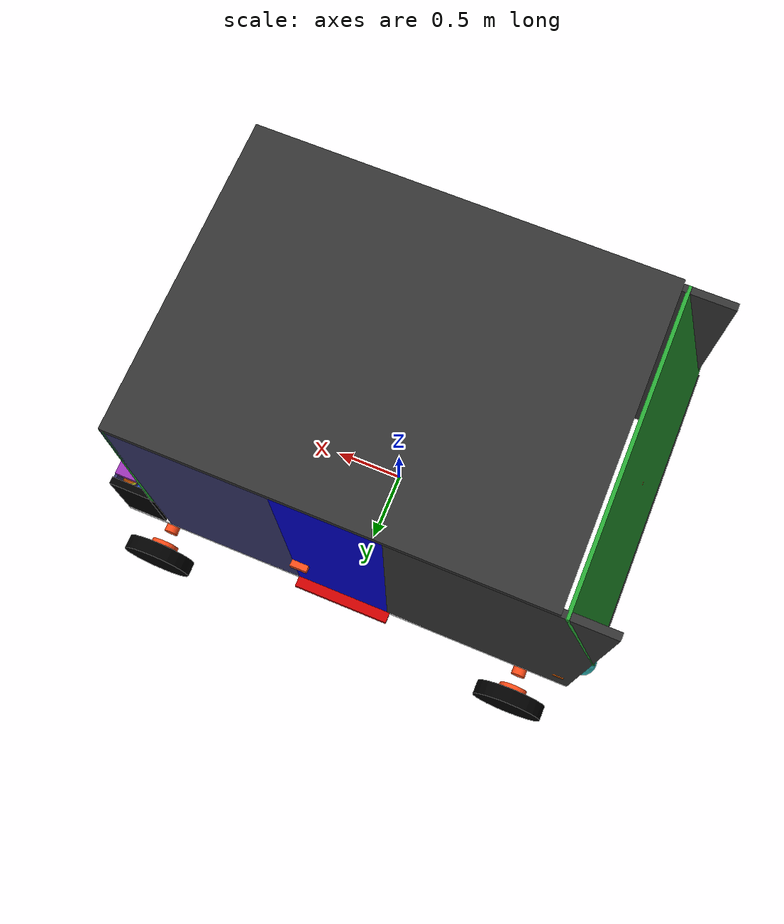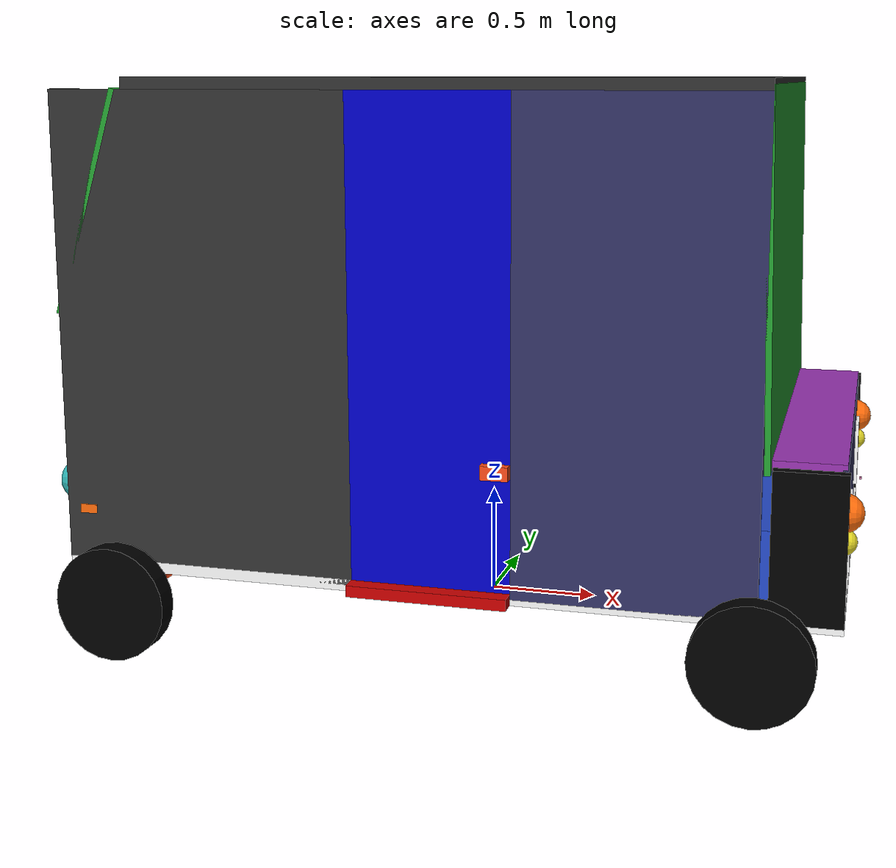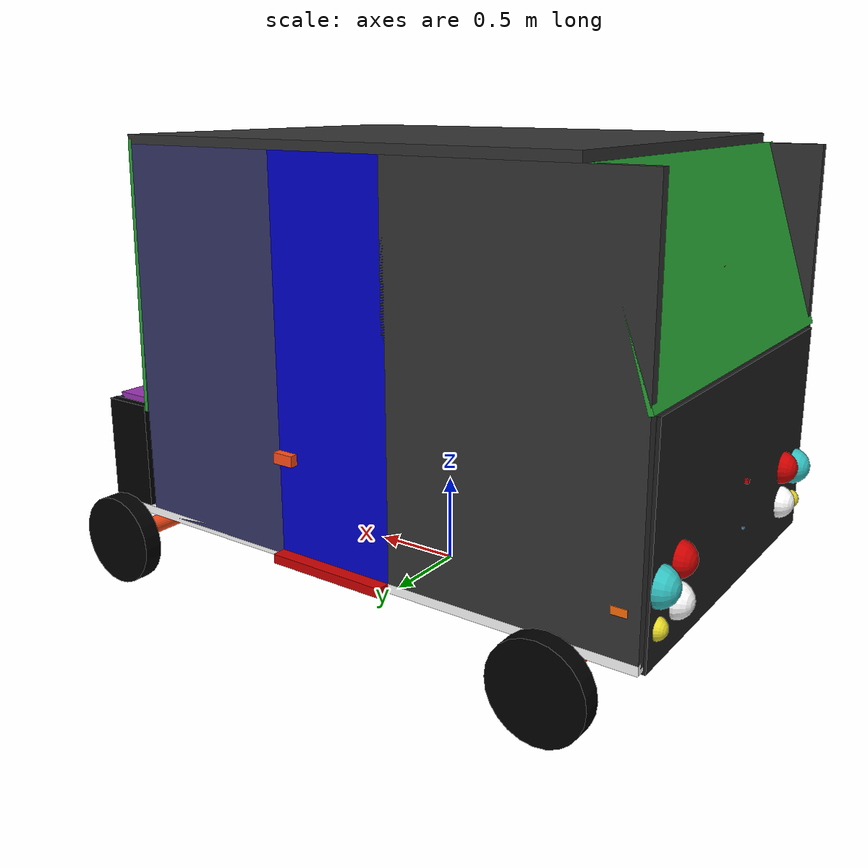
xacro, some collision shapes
<?xml version="1.0"?>

<robot name="navya_bus" xmlns:xacro="http://www.ros.org/wiki/xacro">

	<xacro:include filename="$(find navya_description)/urdf/materials.xacro"/>
	<xacro:include filename="$(find navya_description)/urdf/macros_modified_inertials.xacro"/>

<property name="vehicle_height" value="2.10" />

<!-- base_link properties -->
<property name="chassis_length" value="3.40" />
 <property name="chassis_width" value="2.10" />
 <property name="chassis_height" value="0.05" />
 <property name="chassis_mass" value="80.3000" />

 <!-- door properties -->
 <property name="door_width" value="0.702"/>
 <property name="door_length" value="${vehicle_height}"/>
 <property name="door_height" value="${chassis_height}"/>
 <property name="door_mass" value="12.0"/>

 <!-- guard -->
<property name="frontguard_width" value="${vehicle_height*0.3}" />
<property name="frontguard_height" value="0.02" />
<property name="frontguard_length" value="${chassis_width-2*chassis_height}" />
<property name="frontguard_mass" value="200.000" />
<property name="rearguard_width" value="${vehicle_height*0.55}" />
<property name="rearguard_height" value="0.02" />
 <property name="rearguard_length" value="${chassis_width -2*chassis_height}" />
<property name="rearguard_mass" value="180.000" />

<!-- axle -->
 <property name="axle_radius" value="0.05" />
 <property name="axle_length" value="2.2" />
<property name="axle_mass" value="70.000" />
<property name="axle_pos" value="${(chassis_length*0.5*0.8)}"/>

 <!-- rim -->
 <property name="rim_mass" value="200.00" />
 <property name="rim_radius" value="${(axle_radius)*2}" />
 <property name="rim_length" value="0.03" />
 <property name="rim_y_pos" value="${axle_length*0.5}"/>
 <property name="rim_y_t_pos" value="${.08391+.5*rim_length+rim_y_pos}"/>
  <property name="tyre_y_t_pos" value="${.7*wheel_length+.5*rim_length}"/>
 <property name="rim_x_pos" value="${axle_pos}"/>

 <!-- wheels -->
<property name="wheel_radius" value="${rim_radius*2.5}" />
<property name="wheel_length" value="0.102" />
<property name="wheel_mass" value="21.00" />
<property name="wheel_y_pos" value="${rim_y_pos+rim_length}"/>
 <property name="wheel_x_pos" value="${axle_pos}"/>

<!-- pedals -->
 <property name="pedal_mass" value="0.90" />
 <property name="pedal_radius" value="0.03" />
 <property name="pedal_height" value="0.12" />

 <!-- front side base_link -->
<property name="front_side_chassis_width" value="${chassis_length*0.3}" />
<!-- rear side base_link -->
<property name="rear_side_chassis_width" value="${chassis_length*0.4}" />
<!--  side door base_link -->
<property name="side_door_width" value="${chassis_length*0.3}" />
<property name="side_door_mass" value="18.00" />

<!-- All side base_link properties -->
 <property name="side_chassis_length" value="${vehicle_height}" />
 <property name="side_chassis_height" value="${chassis_height}" />
 <property name="side_chassis_mass" value="30.0" />

 <!-- rear side base_link -->
<property name="rear_side_chassis_width" value="${chassis_length*0.4}" />

<!-- lights properties-->

 <property name="foglight_height" value="0.005" />
 <property name="foglight_mass" value="0.052" />
 <property name="trafficator_radius" value="0.08"/>
 <property name="trafficator_mass" value="1.8"/>
 <property name="foglight_radius" value="${trafficator_radius*0.7}" />
 <property name="tr_light_length" value="0.020" />
 <property name="tr_light_width" value="0.0110" />
 <property name="tr_light_height" value="0.005" />
 <property name="tr_light_mass" value="0.452" />
 <property name="headlight_length" value="0.3" />
 <property name="headlight_width" value="0.2" />
 <property name="headlight_height" value="0.05" />
 <property name="headlight_mass" value="1.02" />
 <property name="rearlight_radius" value="0.050" />
 <property name="rearlight_length" value="0.015" />
 <property name="rearlight_mass" value="0.815" />
 <property name="breaklight_radius" value="0.0450" />
 <property name="breaklight_length" value="0.013" />
 <property name="breaklight_mass" value="0.715" />

 <!-- steering properties -->
 <property name="steering_radius" value="0.120" />
 <property name="steering_length" value="0.015" />
 <property name="steering_mass" value="12.015" />

 <!-- engine properities -->
  <property name="engine_length" value="${chassis_width-side_chassis_height*3}"/>
<property name="engine_width" value="0.30"/>
<property name="engine_height" value="0.36"/>
<property name="engine_mass" value="80.03"/>

 <!-- std heights -->
 <property name="fg_base_height" value="0.502"/>
 <property name="rg_base_height" value="0.0502"/>
 <property name="ch_base_height" value="${axle_radius+wheel_radius+0.0301}"/>
  <property name="roof_base_height" value="${ch_base_height+vehicle_height}"/>

  <!-- door anchor propeties -->
  <property name="door_anc_length" value="0.70"/>
  <property name="door_anc_width" value="${chassis_height*4}"/>
  <property name="door_anc_height" value="${chassis_height}"/>
  <property name="door_anc_mass" value="20.67"/>

  <!-- WE START TO BUILD FROM HERE : ENJOY-->

<xacro:chassis pos="base" x="0" y="0" z="${ch_base_height}" r="0" p="0" yaw="0" color="White" tY="0" m="${chassis_mass}"
par="world" l="${chassis_length}"/>
<xacro:roof_chassis pos="roof" x="0" y="0" z="${roof_base_height +.5*(chassis_height)}" r="0" p="0" yaw="0" color="Grey" tY="0" m="180"
par="base_link" l="${chassis_length*0.8}"/>

<!-- axles -->
<xacro:axle fb="front" r="${axle_radius}" l="${axle_length}" m="200.00" parent="base_link"
tX="${axle_pos}" tZ="${(wheel_radius)}" flipX="0.5" xOr="0" yOr="0" zOr="0"/>
<xacro:axle fb="rear" r="${axle_radius}" l="${axle_length}" m="200.00" parent="base_link"
tX="-${axle_pos}" tZ="${(wheel_radius)}" flipX="0.5" xOr="0" yOr="0" zOr="0"/>

<!-- adding the front rims  up="${(1/3)}", but use 0 for view-->
<xacro:front_wheel_rim fb="front" lr="left" r="${rim_radius}" l="${rim_length}" m="${rim_mass}"
 parent="front_axle" tZ="-${rim_y_t_pos}" flipX="0.5"  up="${(1/6)}" lo="-${(1/6)}" rY="1"/>
<xacro:front_wheel_rim fb="front" lr="right" r="${rim_radius}" l="${rim_length}" m="${rim_mass}"
 parent="front_axle" tZ="${rim_y_t_pos}" flipX="0.5"  up="${(1/6)}" lo="-${(1/6)}"  rY="1"/>

<!-- adding the rear rims -->
<xacro:rear_wheel_rim fb="rear" lr="left" r="${rim_radius}" l="${rim_length}" m="${rim_mass}"
 parent="rear_axle"  tZ="-${rim_y_t_pos}" flipX="0.5"/>
<xacro:rear_wheel_rim fb="rear" lr="right" r="${rim_radius}" l="${rim_length}" m="${rim_mass}"
 parent="rear_axle" tZ="${rim_y_t_pos}" flipX="0.5"/>

<xacro:wheel fb="front" lr="left" wr="${wheel_radius}" wl="${wheel_length}" wm="${wheel_mass}" parent="front_left_wheel_rim" tZ="-${tyre_y_t_pos}"
 flipX="0"/>
<xacro:wheel fb="front" lr="right" wr="${wheel_radius}" wl="${wheel_length}" wm="${wheel_mass}" parent="front_right_wheel_rim" tZ="${tyre_y_t_pos}" flipX="0" />
ro
<!-- Adding rear tyres possibly add turning radius to front wheels of .25meters on y plane
tY=1.45, expand rear axle length by .50meters, this rear's
 parent cant be found by gazebo-->
<xacro:wheel fb="rear" lr="left" wr="${wheel_radius}" wl="${wheel_length}"
wm="${wheel_mass}" parent="rear_left_wheel_rim" tZ="-${tyre_y_t_pos}" flipX="0"
 />
<xacro:wheel fb="rear" lr="right" wr="${wheel_radius}" wl="${wheel_length}"
wm="${wheel_mass}" parent="rear_right_wheel_rim" tZ="${tyre_y_t_pos}" flipX="0"
 />

<!-- Let's work on the front guard now , there is a .2m joint elevation on z plane. So, we are adding .2 to the 0.002-->
<xacro:guard fr="front" parent="base_link" trX="${((0.5*chassis_length )-rearguard_height)}" trY="0.0"
trZ="${.5*frontguard_width+ ch_base_height}" flipY="0.5" flipX="0.5" color="DarkGrey" l="${frontguard_length}" w="${frontguard_width}"
 h="${frontguard_height}" m="${frontguard_mass}" />

<!-- Let's work on the rear guard now , there is a further .3m joint elevation on z plane. So, we are adding .5 to the 0.002-->

 <!--${frontguard_width*.5}-->
  <xacro:boot_guard fr="rear" parent="rear_windscreen" trX="${-(1.1)}"  trY="0.0"
trZ="0" flipY="${0.1570477/1.6}" flipZ="1" color="FlatBlack" l="${rearguard_length}" w="${rearguard_width}"
 h="${rearguard_height}" m="${rearguard_mass}" />

<!--Now it is time to add the front guard lights edge offset 3mm (.003)-->

<!-- headlights  tz red x ty inc y, ${(0.5*chassis_length)}-->
<xacro:light_box fb="front" lr="left" parent="front_guard" trX="${.01}" trY="0.7"
trZ="0.05" flipZ="0.5" flipY="0.5" type="head" color="White" l="${headlight_length}" w="${headlight_width}"
 h="${headlight_height}" m="${headlight_mass}" mZ="1" mY="0"/>

 <xacro:light_box fb="front" lr="right" parent="front_guard" trX="${.01}" trY="-0.7"
  trZ="0" flipY="0.5" flipZ="0.5" type="head" color="White" l="${headlight_length}" w="${headlight_width}"
   h="${headlight_height}" m="${headlight_mass}" mZ="1" mY="0" />

<!-- trafficators. ty inc z & tz red y-->
<xacro:light_sphere fb="front" lr="left" parent="front_guard" trX="${1.708}" trY="-0.90" trZ="${(foglight_radius*2+0.01)}"
 type="trafficator" color="Orange" r="${trafficator_radius}"  m="${trafficator_mass}" />

 <xacro:light_sphere fb="front" lr="right" parent="front_guard" trX="${1.708}" trY="0.90" trZ="${(foglight_radius*2+0.01)}"
  type="trafficator" color="Orange" r="${trafficator_radius}"  m="${trafficator_mass}" />

  <!-- Foglights add anything to  height for z-plane dispalcemnt in the 3D . Add funny hdlght color for curiousity sake-->
<xacro:light_sphere fb="front" lr="left" parent="front_guard" trX="${1.708}" trY="-0.90" trZ="0.002"
 type="fog" color="Yellow" r="${foglight_radius}"  m="${foglight_mass}"/>

 <xacro:light_sphere fb="front" lr="right" parent="front_guard" trX="${1.708}" trY="0.90" trZ="0.002"
  type="fog" color="Yellow" r="${foglight_radius}"  m="${foglight_mass}"/>

  <!--Now it is time to add the rear guard lights edge offset 3mm (.003)-->

<!-- first, add the left rear side chassis -->
<xacro:chassis_body fb="rear" lr="left" parent="base_link" trX="-${0.5*(chassis_length-rear_side_chassis_width)}"
trY="${.5*(chassis_width-side_chassis_height)}" trZ="${0.5*side_chassis_length +ch_base_height}" flipY="0" flipX="0.5" color="Grey"
w="${side_chassis_length}" l="${rear_side_chassis_width}" h="${side_chassis_height}" m="${side_chassis_mass}"
/>
<!-- then, add the right rear side chassis -->
<xacro:chassis_body fb="rear" lr="right" parent="base_link" trX="-${0.5*(chassis_length-rear_side_chassis_width)}"
trY="${-.5*(chassis_width-side_chassis_height)}" trZ="${0.5*side_chassis_length+ch_base_height}" flipY="0" flipX="0.5" color="Grey"
w="${side_chassis_length}" l="${rear_side_chassis_width}" h="${side_chassis_height}"
 m="${side_chassis_mass}"/>

<!-- rearlights add anything to frontguard_base height for z-plane dispalcemnt in the 3D .y is Z nd Z is Y plaens -->
<xacro:light_sphere fb="rear" lr="left" parent="rear_guard" trX="${-(0.5*chassis_length)}" trY="0.90"
trZ="-0.75" type="rear" color="Turquoise" r="${rearlight_radius*2}"  m="${rearlight_mass}" />

 <xacro:light_sphere fb="rear" lr="right" parent="rear_guard" trX="${-(0.5*chassis_length)}" trY="-0.90"
 trZ="-0.75" type="rear" color="Turquoise" r="${rearlight_radius*2}"  m="${rearlight_mass}"
 />

 <!-- Lights  -->

 <!-- breaklights . -->
<xacro:light_sphere fb="rear" lr="left" parent="rear_guard" trX="${-(0.5*chassis_length)}" trY="0.7"
trZ="-0.7" type="break" color="Red" r="${breaklight_radius*2}"  m="${breaklight_mass}" />

<xacro:light_sphere fb="rear" lr="right" parent="rear_guard" trX="${-(0.5*chassis_length)}" trY="-0.7"
 trZ="-0.7" type="break" color="Red" r="${breaklight_radius*2}"  m="${breaklight_mass}"
 />

 <!-- reverse lights -->
 <xacro:light_sphere fb="rear" lr="left" parent="rear_guard" trX="${-(0.5*chassis_length)}" trY="0.7"
 trZ="${-0.9}" type="reverse" color="White" r="${breaklight_radius*2}"  m="${breaklight_mass}"
 />

 <xacro:light_sphere fb="rear" lr="right" parent="rear_guard" trX="${-(0.5*chassis_length)}" trY="-0.7"
  trZ="${-0.9}" type="reverse" color="White" r="${breaklight_radius*2}"  m="${breaklight_mass}"
   />

<!-- rear trafficators  tz red x ty inc y-->
<xacro:light_box fb="rear" lr="left" parent="left_rear_chassis" trX="-0.58" trY="-0.8" trZ="0.2"
type="trafficator" flipZ="0" flipY="0" color="Orange" l="${trafficator_radius}"
 w="${trafficator_radius*0.7}" h="${headlight_height*0.8}" m="${trafficator_mass}" mZ="0" mY="1"
  />

 <xacro:light_box fb="rear" lr="right" parent="right_rear_chassis" trX="-0.58" trY="-0.8" trZ="-0.2"
  type="trafficator" flipZ="0" flipY="0" color="Orange" l="${trafficator_radius}"
  w="${trafficator_radius*0.7}" h="${headlight_height*0.8}" m="${trafficator_mass}"
   mZ="0" mY="1"
   />

  <!-- Foglights  -->
<xacro:light_sphere fb="rear" lr="left" parent="rear_guard" trX="${-(0.3*chassis_length)}" trY="0.90"
 trZ="-0.95" type="fog" color="Yellow" r="${foglight_radius}"  m="${foglight_mass}" />

 <xacro:light_sphere fb="rear" lr="right" parent="rear_guard" trX="${-(0.3*chassis_length)}" trY="-0.90"
  trZ="-0.95" type="fog" color="Yellow" r="${foglight_radius}"  m="${trafficator_mass}" />

<!-- bus engine. We used a 15cm .15m offset to the dashboard and front guard accessories  -->

<xacro:engine parent="base_link" trX="${(0.5*chassis_length-engine_width+.05)}" trY="0" fX="0" fY="0"
  m="${engine_mass}" col="BlueTransparent" trZ="${0.5*engine_height+ch_base_height}" l="${engine_length}"
   w="${engine_width}" h="${engine_height}" />

<!-- break anchor & pedal ${(1/6)} used = trX="1.245" trY="0.9" trZ="0.42"-->
<xacro:anchor_cylinder type="break" r="${pedal_radius}" l="${pedal_height}" parent="bus_engine"
m="${pedal_mass}" trX="-${.5*engine_width+.05}" trY="${0.20*engine_length}"
 trZ="-${.2*engine_height}" fZ="0" fY="${-(1/6)}" />

<xacro:pedal type="break" l="${pedal_radius*4}" w="${pedal_radius*2}" h="${(pedal_height/4)}"
parent="break_anchor" m="${pedal_mass}" trX="-.03" trY="0" trZ="${.5*(pedal_height*1.25) +.03}"
fZ="0" fY="${-(1/6)}" col="Red"/>

<!-- clutch anchor & pedal ${(1/6)} trX="1.245" trY="0.8" trZ="0.42"-->
<xacro:anchor_cylinder type="clutch" r="${pedal_radius}" l="${pedal_height}" parent="bus_engine"
m="${pedal_mass}" trX="-${.5*engine_width+.05}" trY="${0.16*engine_length}"
trZ="-${.2*engine_height}" fZ="0" fY="${-(1/6)}" />

<xacro:pedal type="clutch" l="${pedal_radius*4}" w="${pedal_radius*2}" h="${(pedal_height/4)}"
parent="clutch_anchor" m="${pedal_mass}" trX="-.03" trY="0" trZ="${.5*(pedal_height*1.25) +.03}"
fZ="0" fY="${-(1/6)}" col="BlueTransparent" />

<!-- acclerator anchor & pedal ${(1/6)} trX="1.245" trY="0.7" trZ="0.42" -->
<xacro:anchor_cylinder type="accelerator" r="${pedal_radius}" l="${pedal_height}"
 parent="bus_engine" m="${pedal_mass}" trX="-${.5*engine_width+.05}"
 trY="${0.12*engine_length}" trZ="-${.2*engine_height}" fZ="0" fY="${-(1/6)}" />

<xacro:pedal type="accelerator" l="${pedal_radius*4}" w="${pedal_radius*2}" h="${(pedal_height/4)}"
 parent="accelerator_anchor" m="${pedal_mass}" trX="-.03" trY="0" trZ="${.5*(pedal_height*1.25) +.03}"
  fZ="0" fY="${-(1/6)}" col="DarkGrey" />

<!-- steering anchor & wheel ${(1/6)} x 1, y .515, z 0.95 trX="1.225" trY="0.52" trZ="0.627"-->
<xacro:anchor_cylinder type="steering" r="${pedal_radius}" l="${pedal_height*6}" parent="bus_engine"
 m="${pedal_mass*4}" trX="-${.5*engine_width+.05}" trY="${0.25*engine_length}"
 trZ="${.5*(pedal_height*6 - engine_height)}" fZ="0" fY="${-(1/6)}" />
<xacro:steering type="steering" r="${steering_radius}" l="${steering_length}"
parent="steering_anchor" m="${pedal_mass}" trX="-0.007" trY="0"
trZ="${.5*(steering_length+pedal_height*6) +.025}" fY="${-(1/6)}" col="Green" />

<!-- bonnet -${chassis_width/2}, ${frontguard_width+ch_base_height}-->
<xacro:bonnet_hood bh="bonnet" parent="front_guard" trX="-${0.5*frontguard_width}" trY="0"
trZ="-${engine_width}" flipY="-0.5" color="Purple" l="${engine_length}" w="${engine_width}"
h="${engine_height/8}" m="${engine_mass/10}"/>

<!-- engine guides -->
<!-- left -->
<xacro:chassis_body fb="engine_cover" lr="left" parent="base_link" trX="${0.5*(chassis_length-engine_width)}"
trY="${(chassis_width*0.5-side_chassis_height*0.5)}" trZ="${.5*frontguard_width+ch_base_height}" flipY="0" flipX="0.5" color="Black"
l="${engine_width}" w="${frontguard_width}" h="${side_chassis_height}" m="${side_chassis_mass*0.2}"/>
<!-- right -->
<xacro:chassis_body fb="engine_cover" lr="right" parent="base_link" trX="${0.5*(chassis_length-engine_width)}"
trY="-${(chassis_width*0.5-side_chassis_height*0.5)}" trZ="${.5*frontguard_width+ch_base_height}" flipY="0" flipX="0.5" color="Black"
l="${engine_width}" w="${frontguard_width}" h="${side_chassis_height}" m="${side_chassis_mass*0.2}"/>

<!-- front chassis body -->
<!-- left ${0.5*(chassis_length)-engine_width}-->
<xacro:chassis_body fb="front" lr="left" parent="base_link" trX="0.85"
trY="${(chassis_width*0.5-side_chassis_height*0.5)}" trZ="${.5*side_chassis_length+ch_base_height}" flipY="0" flipX="0.5" color="DarkGrey"
l="${front_side_chassis_width}" w="${side_chassis_length}" h="${side_chassis_height}" m="${side_chassis_mass}"/>
<!-- right -->
<xacro:chassis_body fb="front" lr="right" parent="base_link" trX="0.85"
trY="-${(chassis_width*0.5-side_chassis_height*0.5)}" trZ="${.5*side_chassis_length+ch_base_height}" flipY="0" flipX="0.5" color="DarkGrey"
l="${front_side_chassis_width}" w="${side_chassis_length}" h="${side_chassis_height}" m="${side_chassis_mass}"/>

<!-- now the front windscreen  l="1.51958"-->
<xacro:windscreen name="front" x="1.365" y="0" z="${1.675}" r="0" p="0.49338" yaw="0" par="roof_chassis"
 m="12.00" l="1.51958" w="${chassis_width}" cX="0" cY="${(1/4)}" h="${chassis_height*0.5}" col="WhiteTransparent"/>

 <!-- now the rear windscreen  l="1.51958", leave the first one below commented-->
<!--xacro:windscreen name="rear" x="-1.05" y="0" z="${0.16}" r="0" p="0.095492966" yaw="0" par="rear_guard"
 m="12.00" l="1.02" w="${chassis_width}" h="${chassis_height*0.5}" col="WhiteTransparent"/-->
 <xacro:windscreen name="rear" x="-1.55" y="0" z="${1.920}" r="0" p="-0.404507" yaw="0" par="roof_chassis"
 m="12.00" l="1.02" w="${chassis_width}" cX="1" cY="${0}" h="${chassis_height*0.5}" col="WhiteTransparent"/>

 <!-- left door anchor for opening the door against the rear chassis body. This is not the door handle -->
 <xacro:door_anchor lr="left" par="base_link" col="Red" tX="-0.01" fY="0" fX="0" fZ="0" fc="0.5"
 tY="${chassis_width*0.5 - door_height*.5}" tZ="${ch_base_height}" l="${door_anc_length}"  w="${door_anc_width}"
 h="${door_anc_height}" mX="-1" mY="0" mZ="0" m="${door_anc_mass}" color="Purple"/>

 <!-- right door anchor for opening the door against the rear chassis body. This is not the door handle -->
 <xacro:door_anchor lr="right" par="base_link" col="Red" tX="-0.01"  fY="0" fX="0" fZ="0" fc="-0.5"
 tY="-${chassis_width*0.5 - door_height*.5}" tZ="${ch_base_height}" l="${door_anc_length}" w="${door_anc_width}"
 h="${door_anc_height}" mX="-1" mY="0" mZ="0" m="${door_anc_mass}" color="Purple"/>

<!-- left door is mounted -->
<xacro:door lr="left" parent="left_door_anchor" trX="0" trY="${0}" mX="0" mY="0"
mZ="-1" trZ="${0.5*door_length}" fY="0" fX="0.5" color="Blue" l="${door_length}"
 w="${door_width}" h="${door_height}"  rcX="-.5" rcY="0.5" rcZ="0.03"
 m="${door_mass}" />

<!-- right door is mounted  ${ch_base_height+0.5*door_length}  ${0.5*chassis_width}-->
<xacro:door lr="right" parent="right_door_anchor" trX="0" trY="-${0}" mX="0" mY="0"
mZ="1" trZ="${0.5*door_length}" fY="0" fX="0.5" color="Blue" l="${door_length}"
  w="${door_width}" h="${door_height}"  rcX="-.50" rcY="-0.5" rcZ="-.03"
  m="${door_mass}" />

<!-- NOW WE ADD THE DOOR HANDLES -->

<xacro:door_handle type="left" par="left_door" l="0.14" w="0.12" h="0.06" tX="0.29" tY="-0.5" tZ="0.0" fX="0.5" color="Wood"/>

<xacro:door_handle type="right" par="right_door" l="0.14" w="0.12" h="0.06" tX="0.29" tY="-0.5" tZ="0.0" fX="0.5" color="Wood"/>

<gazebo>
  <plugin name="gazebo_ros_control" filename="libgazebo_ros_control.so">
    <robotNamespace>/navya_bus</robotNamespace>
    <robotSimType>gazebo_ros_control/DefaultRobotHWSim</robotSimType>
  </plugin>
</gazebo>
<gazebo >
<plugin name="vehicle_driver" filename="/home/darling/Desktop/navya_working_copy/devel/lib/libvehicle_driver.so"/>
</gazebo>

</robot>

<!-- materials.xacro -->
<robot>

  <material name="black">
    <color rgba="0.0 0.0 0.0 1.0"/>
  </material>

  <material name="blue">
    <color rgba="0.0 0.0 0.8 1.0"/>
  </material>

  <material name="green">
    <color rgba="0.0 0.8 0.0 1.0"/>
  </material>

  <material name="grey">
    <color rgba="0.2 0.2 0.2 1.0"/>
  </material>

  <material name="orange">
    <color rgba="${255/255} ${108/255} ${10/255} 1.0"/>
  </material>

  <material name="brown">
    <color rgba="${222/255} ${207/255} ${195/255} 1.0"/>
  </material>

  <material name="red">
    <color rgba="0.8 0.0 0.0 1.0"/>
  </material>

  <material name="white">
    <color rgba="1.0 1.0 1.0 1.0"/>
  </material>
  <material name="White">
    <color rgba="1 1 1 1"/>
  </material>

  <material name="WhiteTransparent">
    <color rgba="1 1 1 0.3"/>
  </material>
  <material name="Black">
    <color rgba="${0.0} ${0.0} ${0.0} 1.0"/>
  </material>

  <material name="Blue">
    <color rgba="0.0 0.0 0.8 1.0"/>
  </material>
  <material name="BlueTransparent">
    <color rgba="0.0 0.0 0.8 0.7"/>
  </material>

  <material name="Green">
    <color rgba="0.0 0.8 0.0 1.0"/>
  </material>

  <material name="GreenTransparent">
    <color rgba="0.1 0.9 0.05 0.2"/>
  </material>

  <material name="Grey">
    <color rgba="0.2 0.2 0.2 1.0"/>
  </material>

  <material name="DarkGrey">
    <color rgba="0.2 0.2 0.4 1.0"/>
  </material>

  <material name="Orange">
    <color rgba="${255/255} ${108/255} ${10/255} 1.0"/>
  </material>

  <material name="Brown">
    <color rgba="1 0.3 0.1 1.0"/>
  </material>
<material name="Wood">
    <color rgba="1 0.3 0.1 1.0"/>
  </material>

  <material name="Red">
    <color rgba="0.8 0.0 0.0 1.0"/>
  </material>

</robot>
